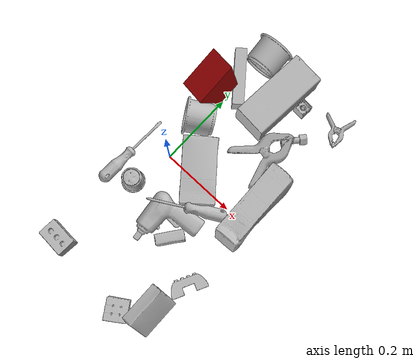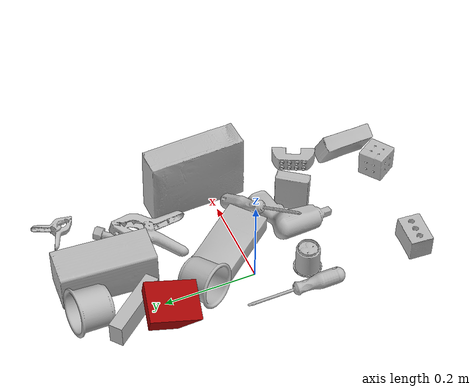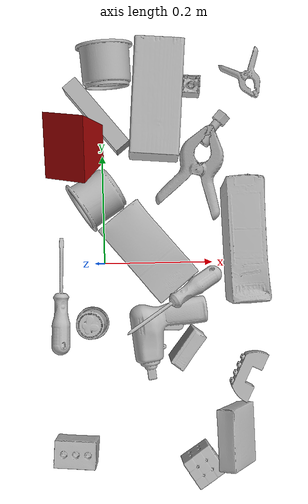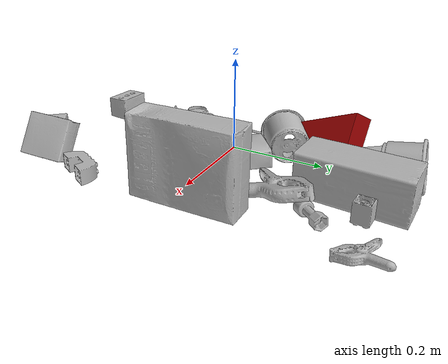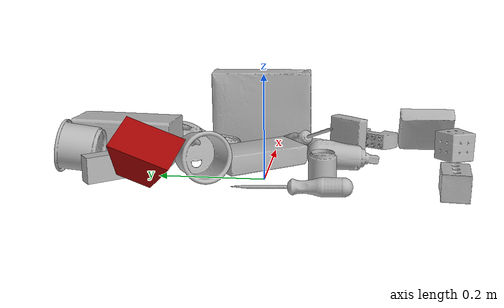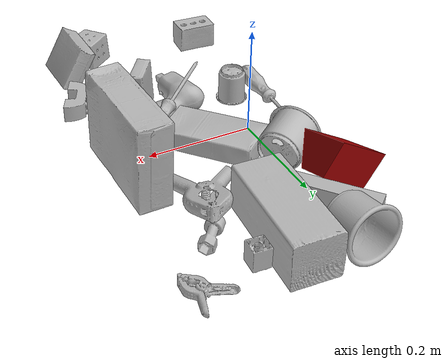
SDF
<sdf version="1.4">
  <world name="default">
    <light name="light1" type="point">
      <pose>0 0 1 0 0 0</pose>
      <diffuse>3 3 3 1</diffuse>
      <specular>3 3 3 1</specular>
    </light>
    <light name="light2" type="point">
      <pose>0 0.5 2 0 0 0</pose>
      <diffuse>1 1 1 1</diffuse>
      <specular>1 1 1 1</specular>
    </light>
    <light name="light3" type="point">
      <pose>0 0.5 2 0 0 0</pose>
      <diffuse>3 3 3 1</diffuse>
      <specular>3 3 3 1</specular>
    </light>
    <scene>
      <ambient>0.7 0.7 0.7</ambient>
    </scene>
    <model name="box21">
      <link name="link_box21">
        <collision name="default">
          <geometry>
            <mesh>
              <uri>model://cracker_box/collision_meshes/collision.obj</uri>
              <scale>1.0 1.0 1.0</scale>
            </mesh>
          </geometry>
          <surface>
            <friction>
              <ode>
                <mu>0.5</mu>
                <mu2>0.5</mu2>
              </ode>
            </friction>
          <contact>
        <ode>
            <max_vel>0</max_vel>
            <min_depth>0.0001</min_depth>
            <kp>1e8</kp>
        </ode>
    </contact></surface>
        </collision>
        <visual name="default">
          <geometry>
            <mesh>
              <uri>model://cracker_box/visual_meshes/visual.dae</uri>
              <scale>1.0 1.0 1.0</scale>
            </mesh>
          </geometry>
        </visual>
        <inertial>
          <mass>3.1344146728515625</mass>
          <pose>0.0009464123286306858 0.00025434247800149024 -0.0017029535956680775 -0.0003162077429326042 -0.011106488668875016 0.0025467950024750923</pose>
          <inertia>
            <ixx>0.0079725515</ixx>
            <iyy>0.01316425</iyy>
            <izz>0.01878659</izz>
            <ixy>0</ixy>
            <ixz>0</ixz>
            <iyz>0</iyz>
          </inertia>
        </inertial>
      </link>
      <pose>0.2518065869808197 0.0357876680791378 0.08175767213106155 1.5452338861004717 0.009040356279977546 1.6128749759805874</pose>
    </model>
    <model name="box22">
      <link name="link_box22">
        <collision name="default">
          <geometry>
            <mesh>
              <uri>model://jenga/collision_meshes/collision.obj</uri>
              <scale>1.0 1.0 1.0</scale>
            </mesh>
          </geometry>
          <surface>
            <friction>
              <ode>
                <mu>0.5</mu>
                <mu2>0.5</mu2>
              </ode>
            </friction>
          <contact>
        <ode>
            <max_vel>0</max_vel>
            <min_depth>0.0001</min_depth>
            <kp>1e8</kp>
        </ode>
    </contact></surface>
        </collision>
        <visual name="default">
          <geometry>
            <mesh>
              <uri>model://jenga/visual_meshes/visual.dae</uri>
              <scale>1.0 1.0 1.0</scale>
            </mesh>
          </geometry>
        </visual>
        <inertial>
          <mass>0.23869852721691132</mass>
          <pose>-2.502855807051674e-07 -0.0001025000965455547 -4.092339804628864e-05 0.0 -7.34215461761844e-07 0.0</pose>
          <inertia>
            <ixx>6.605367e-05</ixx>
            <iyy>0.00044757788</iyy>
            <izz>0.00047782745</izz>
            <ixy>0</ixy>
            <ixz>0</ixz>
            <iyz>0</iyz>
          </inertia>
        </inertial>
      </link>
      <pose>-0.006986482068896294 0.2693018913269043 0.02449663169682026 -1.5776039904648584 1.3404978914510776e-05 -0.884746933527563</pose>
    </model>
    <model name="box23">
      <link name="link_box23">
        <collision name="default">
          <geometry>
            <mesh>
              <uri>model://rubiks_cube/collision_meshes/collision.obj</uri>
              <scale>1.0 1.0 1.0</scale>
            </mesh>
          </geometry>
          <surface>
            <friction>
              <ode>
                <mu>0.5</mu>
                <mu2>0.5</mu2>
              </ode>
            </friction>
          <contact>
        <ode>
            <max_vel>0</max_vel>
            <min_depth>0.0001</min_depth>
            <kp>1e8</kp>
        </ode>
    </contact></surface>
        </collision>
        <visual name="default">
          <geometry>
            <mesh>
              <uri>model://rubiks_cube/visual_meshes/visual.dae</uri>
              <scale>1.0 1.0 1.0</scale>
            </mesh>
          </geometry>
        </visual>
        <inertial>
          <mass>0.26229962706565857</mass>
          <pose>2.6721041649580002e-05 5.2569666877388954e-05 -7.264316082000732e-06 -0.05467189873579491 -0.09814109048128683 -0.0344550730209751</pose>
          <inertia>
            <ixx>0.00014493814</ixx>
            <iyy>0.00014426222</iyy>
            <izz>0.00014613918</izz>
            <ixy>0</ixy>
            <ixz>0</ixz>
            <iyz>0</iyz>
          </inertia>
        </inertial>
      </link>
      <pose>0.17436820268630981 -0.3676859438419342 0.029701991006731987 -1.6115168325355764 -0.01939296086309491 -2.5522601842188792</pose>
    </model>
    <model name="cup1">
      <link name="link_cup1">
        <collision name="default">
          <geometry>
            <mesh>
              <uri>model://j_cups/collision_meshes/collision.obj</uri>
              <scale>1.0 1.0 1.0</scale>
            </mesh>
          </geometry>
          <surface>
            <friction>
              <ode>
                <mu>0.5</mu>
                <mu2>0.5</mu2>
              </ode>
            </friction>
          <contact>
        <ode>
            <max_vel>0</max_vel>
            <min_depth>0.0001</min_depth>
            <kp>1e8</kp>
        </ode>
    </contact></surface>
        </collision>
        <visual name="default">
          <geometry>
            <mesh>
              <uri>model://j_cups/visual_meshes/visual.dae</uri>
              <scale>1.0 1.0 1.0</scale>
            </mesh>
          </geometry>
        </visual>
        <inertial>
          <mass>0.10388943552970886</mass>
          <pose>0.0006164857186377048 0.0005398984649218619 -0.0013479008339345455 0.03030360356214998 0.03758024855654077 0.43868424196936845</pose>
          <inertia>
            <ixx>0.00015254253</ixx>
            <iyy>0.0001541288</iyy>
            <izz>0.00017584988</izz>
            <ixy>0</ixy>
            <ixz>0</ixz>
            <iyz>0</iyz>
          </inertia>
        </inertial>
      </link>
      <pose>0.012525876984000206 0.3560098707675934 0.04715463146567345 -1.328674091356929 -1.0401559700337963 -0.1494510926290632</pose>
    </model>
    <model name="cup2">
      <link name="link_cup2">
        <collision name="default">
          <geometry>
            <mesh>
              <uri>model://i_cups/collision_meshes/collision.obj</uri>
              <scale>1.0 1.0 1.0</scale>
            </mesh>
          </geometry>
          <surface>
            <friction>
              <ode>
                <mu>0.5</mu>
                <mu2>0.5</mu2>
              </ode>
            </friction>
          <contact>
        <ode>
            <max_vel>0</max_vel>
            <min_depth>0.0001</min_depth>
            <kp>1e8</kp>
        </ode>
    </contact></surface>
        </collision>
        <visual name="default">
          <geometry>
            <mesh>
              <uri>model://i_cups/visual_meshes/visual.dae</uri>
              <scale>1.0 1.0 1.0</scale>
            </mesh>
          </geometry>
        </visual>
        <inertial>
          <mass>0.057485051453113556</mass>
          <pose>0.00011239853483857587 0.00016797262651380152 -0.000857901235576719 -0.028982969026390082 -0.03987335468246028 -0.34591562504163004</pose>
          <inertia>
            <ixx>7.958892e-05</ixx>
            <iyy>8.029015e-05</iyy>
            <izz>8.8953486e-05</izz>
            <ixy>0</ixy>
            <ixz>0</ixz>
            <iyz>0</iyz>
          </inertia>
        </inertial>
      </link>
      <pose>-0.0070112356916069984 0.11903385818004608 0.04502492770552635 -1.174412416920109 1.2351472720084204 2.5270743818284362</pose>
    </model>
    <model name="box11">
      <link name="link_box11">
        <collision name="default">
          <geometry>
            <mesh>
              <uri>model://wood_block/collision_meshes/collision.obj</uri>
              <scale>1.0 1.0 1.0</scale>
            </mesh>
          </geometry>
          <surface>
            <friction>
              <ode>
                <mu>0.5</mu>
                <mu2>0.5</mu2>
              </ode>
            </friction>
          <contact>
        <ode>
            <max_vel>0</max_vel>
            <min_depth>0.0001</min_depth>
            <kp>1e8</kp>
        </ode>
    </contact></surface>
        </collision>
        <visual name="default">
          <geometry>
            <mesh>
              <uri>model://wood_block/visual_meshes/visual.dae</uri>
              <scale>1.0 1.0 1.0</scale>
            </mesh>
          </geometry>
        </visual>
        <inertial>
          <mass>2.2218124866485596</mass>
          <pose>-5.813315510749817e-06 -0.000570809468626976 0.0002640858292579651 -0.052211005792275555 -0.005192694700552194 -0.006861375481739596</pose>
          <inertia>
            <ixx>0.0029731211</ixx>
            <iyy>0.009392092</iyy>
            <izz>0.009356961</izz>
            <ixy>0</ixy>
            <ixz>0</ixz>
            <iyz>0</iyz>
          </inertia>
        </inertial>
      </link>
      <pose>0.1028292253613472 0.2923469841480255 0.04427739605307579 -1.5548834142513384 0.0048188369595806736 1.4938271163155115</pose>
    </model>
    <model name="box12">
      <link name="link_box12">
        <collision name="default">
          <geometry>
            <mesh>
              <uri>model://sugar_box/collision_meshes/collision.obj</uri>
              <scale>1.0 1.0 1.0</scale>
            </mesh>
          </geometry>
          <surface>
            <friction>
              <ode>
                <mu>0.5</mu>
                <mu2>0.5</mu2>
              </ode>
            </friction>
          <contact>
        <ode>
            <max_vel>0</max_vel>
            <min_depth>0.0001</min_depth>
            <kp>1e8</kp>
        </ode>
    </contact></surface>
        </collision>
        <visual name="default">
          <geometry>
            <mesh>
              <uri>model://sugar_box/visual_meshes/visual.dae</uri>
              <scale>1.0 1.0 1.0</scale>
            </mesh>
          </geometry>
        </visual>
        <inertial>
          <mass>1.0162616968154907</mass>
          <pose>0.0010343727190047503 3.849109634757042e-05 -0.00036364805418998003 -0.0004046261550277283 0.0010506634055573133 0.0026153787890220875</pose>
          <inertia>
            <ixx>0.00084674655</ixx>
            <iyy>0.002736858</iyy>
            <izz>0.0032763465</izz>
            <ixy>0</ixy>
            <ixz>0</ixz>
            <iyz>0</iyz>
          </inertia>
        </inertial>
      </link>
      <pose>0.08266903460025787 0.021882236003875732 0.02236240915954113 3.141271889090917 -0.02510873032150012 2.2691640052591144</pose>
    </model>
    <model name="box13">
      <link name="link_box13">
        <collision name="default">
          <geometry>
            <mesh>
              <uri>model://pudding_box/collision_meshes/collision.obj</uri>
              <scale>1.0 1.0 1.0</scale>
            </mesh>
          </geometry>
          <surface>
            <friction>
              <ode>
                <mu>0.5</mu>
                <mu2>0.5</mu2>
              </ode>
            </friction>
          <contact>
        <ode>
            <max_vel>0</max_vel>
            <min_depth>0.0001</min_depth>
            <kp>1e8</kp>
        </ode>
    </contact></surface>
        </collision>
        <visual name="default">
          <geometry>
            <mesh>
              <uri>model://pudding_box/visual_meshes/visual.dae</uri>
              <scale>1.0 1.0 1.0</scale>
            </mesh>
          </geometry>
        </visual>
        <inertial>
          <mass>0.24922829866409302</mass>
          <pose>0.0004894822486676276 0.0008067885646596551 -0.0005188828217796981 0.005213100397381839 -0.006603797317439846 0.02007982889363753</pose>
          <inertia>
            <ixx>0.00028173975</ixx>
            <iyy>0.00018955652</iyy>
            <izz>0.0004160624</izz>
            <ixy>0</ixy>
            <ixz>0</ixz>
            <iyz>0</iyz>
          </inertia>
        </inertial>
      </link>
      <pose>0.2341250330209732 -0.3148902356624603 0.04684871435165405 -0.030051825471196385 1.062202700741962 0.005358758582300775</pose>
    </model>
    <model name="box14">
      <link name="link_box14">
        <collision name="default">
          <geometry>
            <mesh>
              <uri>model://gelatin_box/collision_meshes/collision.obj</uri>
              <scale>1.0 1.0 1.0</scale>
            </mesh>
          </geometry>
          <surface>
            <friction>
              <ode>
                <mu>0.5</mu>
                <mu2>0.5</mu2>
              </ode>
            </friction>
          <contact>
        <ode>
            <max_vel>0</max_vel>
            <min_depth>0.0001</min_depth>
            <kp>1e8</kp>
        </ode>
    </contact></surface>
        </collision>
        <visual name="default">
          <geometry>
            <mesh>
              <uri>model://gelatin_box/visual_meshes/visual.dae</uri>
              <scale>1.0 1.0 1.0</scale>
            </mesh>
          </geometry>
        </visual>
        <inertial>
          <mass>0.21856601536273956</mass>
          <pose>0.0004319618456065655 0.00011156871914863586 -0.00036403213744051754 -0.001050372093012012 -0.00475581868936722 0.016440559471878533</pose>
          <inertia>
            <ixx>0.00015428978</ixx>
            <iyy>0.000110208384</iyy>
            <izz>0.00023486343</izz>
            <ixy>0</ixy>
            <ixz>0</ixz>
            <iyz>0</iyz>
          </inertia>
        </inertial>
      </link>
      <pose>0.14933572709560394 -0.15278533101081848 0.044736940413713455 1.613976207870861 -0.000138346245892148 0.9316451049305278</pose>
    </model>
    <model name="cup15">
      <link name="link_cup15">
        <collision name="default">
          <geometry>
            <mesh>
              <uri>model://b_cups/collision_meshes/collision.obj</uri>
              <scale>1.0 1.0 1.0</scale>
            </mesh>
          </geometry>
          <surface>
            <friction>
              <ode>
                <mu>0.5</mu>
                <mu2>0.5</mu2>
              </ode>
            </friction>
          <contact>
        <ode>
            <max_vel>0</max_vel>
            <min_depth>0.0001</min_depth>
            <kp>1e8</kp>
        </ode>
    </contact></surface>
        </collision>
        <visual name="default">
          <geometry>
            <mesh>
              <uri>model://b_cups/visual_meshes/visual.dae</uri>
              <scale>1.0 1.0 1.0</scale>
            </mesh>
          </geometry>
        </visual>
        <inertial>
          <mass>0.04691024869680405</mass>
          <pose>0.0005182002787478268 0.0018058588029816747 -0.0013381802709773183 0.1135631498080702 0.03872518969029637 -0.3456955043116969</pose>
          <inertia>
            <ixx>3.0706047e-05</ixx>
            <iyy>3.012308e-05</iyy>
            <izz>2.5838557e-05</izz>
            <ixy>0</ixy>
            <ixz>0</ixz>
            <iyz>0</iyz>
          </inertia>
        </inertial>
      </link>
      <pose>-0.024265510961413383 -0.10920479893684387 0.032155055552721024 3.1415894461371505 1.1848346017104242e-06 1.3048630607826348</pose>
    </model>
    <model name="toy1">
      <link name="link_toy1">
        <collision name="default">
          <geometry>
            <mesh>
              <uri>model://e_lego_duplo/collision_meshes/collision.obj</uri>
              <scale>1.0 1.0 1.0</scale>
            </mesh>
          </geometry>
          <surface>
            <friction>
              <ode>
                <mu>0.5</mu>
                <mu2>0.5</mu2>
              </ode>
            </friction>
          <contact>
        <ode>
            <max_vel>0</max_vel>
            <min_depth>0.0001</min_depth>
            <kp>1e8</kp>
        </ode>
    </contact></surface>
        </collision>
        <visual name="default">
          <geometry>
            <mesh>
              <uri>model://e_lego_duplo/visual_meshes/visual.dae</uri>
              <scale>1.0 1.0 1.0</scale>
            </mesh>
          </geometry>
        </visual>
        <inertial>
          <mass>0.06732096523046494</mass>
          <pose>0.000325604691170156 0.00023485434940084815 0.001952146296389401 -0.02256754688519212 -6.825533823954374e-05 -0.007625149208872714</pose>
          <inertia>
            <ixx>1.40386455e-05</ixx>
            <iyy>5.761822e-05</iyy>
            <izz>5.6108554e-05</izz>
            <ixy>0</ixy>
            <ixz>0</ixz>
            <iyz>0</iyz>
          </inertia>
        </inertial>
      </link>
      <pose>0.2584167718887329 -0.20555871725082397 0.01651816815137863 -1.5716710760413672 0.005947303559928353 1.1160362794364118</pose>
    </model>
    <model name="toy2">
      <link name="link_toy2">
        <collision name="default">
          <geometry>
            <mesh>
              <uri>model://c_toy_airplane/collision_meshes/collision.obj</uri>
              <scale>1.0 1.0 1.0</scale>
            </mesh>
          </geometry>
          <surface>
            <friction>
              <ode>
                <mu>0.5</mu>
                <mu2>0.5</mu2>
              </ode>
            </friction>
          <contact>
        <ode>
            <max_vel>0</max_vel>
            <min_depth>0.0001</min_depth>
            <kp>1e8</kp>
        </ode>
    </contact></surface>
        </collision>
        <visual name="default">
          <geometry>
            <mesh>
              <uri>model://c_toy_airplane/visual_meshes/visual.dae</uri>
              <scale>1.0 1.0 1.0</scale>
            </mesh>
          </geometry>
        </visual>
        <inertial>
          <mass>0.036399733275175095</mass>
          <pose>-0.00023024277470540255 -4.4302899482318026e-07 -0.0060805329121649265 -0.006192184726307751 -0.016797944030005924 0.7654593329003626</pose>
          <inertia>
            <ixx>1.6714015e-05</ixx>
            <iyy>1.6666843e-05</iyy>
            <izz>3.9241195e-06</izz>
            <ixy>0</ixy>
            <ixz>0</ixz>
            <iyz>0</iyz>
          </inertia>
        </inertial>
      </link>
      <pose>0.2051798552274704 0.24541929364204407 0.016113465651869774 -1.5406507989999643 0.888070356497666 -0.6971420815242717</pose>
    </model>
    <model name="toy3">
      <link name="link_toy3">
        <collision name="default">
          <geometry>
            <mesh>
              <uri>model://foam_brick/collision_meshes/collision.obj</uri>
              <scale>1.0 1.0 1.0</scale>
            </mesh>
          </geometry>
          <surface>
            <friction>
              <ode>
                <mu>0.5</mu>
                <mu2>0.5</mu2>
              </ode>
            </friction>
          <contact>
        <ode>
            <max_vel>0</max_vel>
            <min_depth>0.0001</min_depth>
            <kp>1e8</kp>
        </ode>
    </contact></surface>
        </collision>
        <visual name="default">
          <geometry>
            <mesh>
              <uri>model://foam_brick/visual_meshes/visual.dae</uri>
              <scale>1.0 1.0 1.0</scale>
            </mesh>
          </geometry>
        </visual>
        <inertial>
          <mass>0.28719362616539</mass>
          <pose>-0.0002522472059354186 0.00034584346576593816 -0.0002532101352699101 -0.2940183114741006 0.017274439707053432 -0.0007449906726392561</pose>
          <inertia>
            <ixx>0.00012545152</ixx>
            <iyy>0.00020028985</iyy>
            <izz>0.00020283528</izz>
            <ixy>0</ixy>
            <ixz>0</ixz>
            <iyz>0</iyz>
          </inertia>
        </inertial>
      </link>
      <pose>-0.055645961314439774 -0.34214872121810913 0.02591753378510475 0.01381752267686474 0.004276812560462753 -0.07219809268755785</pose>
    </model>
    <model name="toy4">
      <link name="link_toy4">
        <collision name="default">
          <geometry>
            <mesh>
              <uri>model://prism/collision_meshes/collision.obj</uri>
              <scale>1.0 1.0 1.0</scale>
            </mesh>
          </geometry>
          <surface>
            <friction>
              <ode>
                <mu>0.5</mu>
                <mu2>0.5</mu2>
              </ode>
            </friction>
          <contact>
        <ode>
            <max_vel>0</max_vel>
            <min_depth>0.0001</min_depth>
            <kp>1e8</kp>
        </ode>
    </contact></surface>
        </collision>
        <visual name="default">
          <geometry>
            <mesh>
              <uri>model://prism/visual_meshes/visual.dae</uri>
              <scale>1.0 1.0 1.0</scale>
            </mesh>
          </geometry>
        </visual>
        <inertial>
          <mass>0.7170383930206299</mass>
          <pose>-9.85359656624496e-05 -4.96157269935793e-07 -0.0033869098406285048 0.0 0.006559181231804993 0.0</pose>
          <inertia>
            <ixx>0.0006471183</ixx>
            <iyy>0.0007820508</iyy>
            <izz>0.0009579188</izz>
            <ixy>0</ixy>
            <ixz>0</ixz>
            <iyz>0</iyz>
          </inertia>
        </inertial>
      </link>
      <pose>-0.04640727862715721 0.2143823206424713 0.05504785105586052 -2.659033575602333 0.3510324533400359 -1.5938950307902364</pose>
    </model>
    <model name="toy5">
      <link name="link_toy5">
        <collision name="default">
          <geometry>
            <mesh>
              <uri>model://b_toy_airplane/collision_meshes/collision.obj</uri>
              <scale>1.0 1.0 1.0</scale>
            </mesh>
          </geometry>
          <surface>
            <friction>
              <ode>
                <mu>0.5</mu>
                <mu2>0.5</mu2>
              </ode>
            </friction>
          <contact>
        <ode>
            <max_vel>0</max_vel>
            <min_depth>0.0001</min_depth>
            <kp>1e8</kp>
        </ode>
    </contact></surface>
        </collision>
        <visual name="default">
          <geometry>
            <mesh>
              <uri>model://b_toy_airplane/visual_meshes/visual.dae</uri>
              <scale>1.0 1.0 1.0</scale>
            </mesh>
          </geometry>
        </visual>
        <inertial>
          <mass>0.399619996547699</mass>
          <pose>0.005081363022327423 0.004015584941953421 0.009543066844344139 -0.04001809649421662 -0.04022184162979335 -0.5601502893443677</pose>
          <inertia>
            <ixx>0.0007419019</ixx>
            <iyy>0.00029654545</iyy>
            <izz>0.0009229998</izz>
            <ixy>0</ixy>
            <ixz>0</ixz>
            <iyz>0</iyz>
          </inertia>
        </inertial>
      </link>
      <pose>0.1031184270977974 -0.1148437112569809 0.035689085721969604 3.069570164672954 0.07406005917894967 -1.457886998336369</pose>
    </model>
    <model name="toy6">
      <link name="link_toy6">
        <collision name="default">
          <geometry>
            <mesh>
              <uri>model://f_lego_duplo/collision_meshes/collision.obj</uri>
              <scale>1.0 1.0 1.0</scale>
            </mesh>
          </geometry>
          <surface>
            <friction>
              <ode>
                <mu>0.5</mu>
                <mu2>0.5</mu2>
              </ode>
            </friction>
          <contact>
        <ode>
            <max_vel>0</max_vel>
            <min_depth>0.0001</min_depth>
            <kp>1e8</kp>
        </ode>
    </contact></surface>
        </collision>
        <visual name="default">
          <geometry>
            <mesh>
              <uri>model://f_lego_duplo/visual_meshes/visual.dae</uri>
              <scale>1.0 1.0 1.0</scale>
            </mesh>
          </geometry>
        </visual>
        <inertial>
          <mass>0.05315950885415077</mass>
          <pose>2.3694145056651905e-05 0.0001339314185315743 0.0018837872194126248 0.029838727868319145 -0.014424898970195728 -0.6756716124708322</pose>
          <inertia>
            <ixx>1.1232896e-05</ixx>
            <iyy>1.1332969e-05</iyy>
            <izz>9.750634e-06</izz>
            <ixy>0</ixy>
            <ixz>0</ixz>
            <iyz>0</iyz>
          </inertia>
        </inertial>
      </link>
      <pose>0.16624218225479126 0.3214668333530426 0.02189110964536667 3.141535664718236 -0.0016724593082412577 3.0722795481966503</pose>
    </model>
    <model name="hardware1">
      <link name="link_hardware1">
        <collision name="default">
          <geometry>
            <mesh>
              <uri>model://flat_screwdriver/collision_meshes/collision.obj</uri>
              <scale>1.0 1.0 1.0</scale>
            </mesh>
          </geometry>
          <surface>
            <friction>
              <ode>
                <mu>0.5</mu>
                <mu2>0.5</mu2>
              </ode>
            </friction>
          <contact>
        <ode>
            <max_vel>0</max_vel>
            <min_depth>0.0001</min_depth>
            <kp>1e8</kp>
        </ode>
    </contact></surface>
        </collision>
        <visual name="default">
          <geometry>
            <mesh>
              <uri>model://flat_screwdriver/visual_meshes/visual.dae</uri>
              <scale>1.0 1.0 1.0</scale>
            </mesh>
          </geometry>
        </visual>
        <inertial>
          <mass>0.12191366404294968</mass>
          <pose>-0.0489187091588974 -0.0006576801533810794 -0.0006140916957519948 -0.5614853566550635 -0.0032337267722331534 0.006982277608032515</pose>
          <inertia>
            <ixx>1.4404012e-05</ixx>
            <iyy>0.00018286215</iyy>
            <izz>0.00018277747</izz>
            <ixy>0</ixy>
            <ixz>0</ixz>
            <iyz>0</iyz>
          </inertia>
        </inertial>
      </link>
      <pose>-0.08013321459293365 -0.059729207307100296 0.014353182166814804 -2.857243138275688 0.032964101171674684 1.5538994108365585</pose>
    </model>
    <model name="hardware2">
      <link name="link_hardware2">
        <collision name="default">
          <geometry>
            <mesh>
              <uri>model://medium_clamp/collision_meshes/collision.obj</uri>
              <scale>1.0 1.0 1.0</scale>
            </mesh>
          </geometry>
          <surface>
            <friction>
              <ode>
                <mu>0.5</mu>
                <mu2>0.5</mu2>
              </ode>
            </friction>
          <contact>
        <ode>
            <max_vel>0</max_vel>
            <min_depth>0.0001</min_depth>
            <kp>1e8</kp>
        </ode>
    </contact></surface>
        </collision>
        <visual name="default">
          <geometry>
            <mesh>
              <uri>model://medium_clamp/visual_meshes/visual.dae</uri>
              <scale>1.0 1.0 1.0</scale>
            </mesh>
          </geometry>
        </visual>
        <inertial>
          <mass>0.018204163759946823</mass>
          <pose>0.005390994716435671 0.00039532413939014077 -0.0001222158025484532 -0.0012269240735234023 0.0025845026557488396 0.03820772126630794</pose>
          <inertia>
            <ixx>4.959469e-06</ixx>
            <iyy>7.217431e-06</iyy>
            <izz>1.1117007e-05</izz>
            <ixy>0</ixy>
            <ixz>0</ixz>
            <iyz>0</iyz>
          </inertia>
        </inertial>
      </link>
      <pose>0.2695535719394684 0.34385013580322266 0.013314640149474144 -3.0195429046895588 0.07747156046143631 -1.1221715448901541</pose>
    </model>
    <model name="hardware3">
      <link name="link_hardware3">
        <collision name="default">
          <geometry>
            <mesh>
              <uri>model://large_clamp/collision_meshes/collision.obj</uri>
              <scale>1.0 1.0 1.0</scale>
            </mesh>
          </geometry>
          <surface>
            <friction>
              <ode>
                <mu>0.5</mu>
                <mu2>0.5</mu2>
              </ode>
            </friction>
          <contact>
        <ode>
            <max_vel>0</max_vel>
            <min_depth>0.0001</min_depth>
            <kp>1e8</kp>
        </ode>
    </contact></surface>
        </collision>
        <visual name="default">
          <geometry>
            <mesh>
              <uri>model://large_clamp/visual_meshes/visual.dae</uri>
              <scale>1.0 1.0 1.0</scale>
            </mesh>
          </geometry>
        </visual>
        <inertial>
          <mass>0.18972517549991608</mass>
          <pose>0.006369356997311115 0.0003585676895454526 -0.00018398048996459693 -0.002133071569430183 0.00967158655684735 0.02663316926682878</pose>
          <inertia>
            <ixx>0.0001673895</ixx>
            <iyy>0.00031788155</iyy>
            <izz>0.00045985627</izz>
            <ixy>0</ixy>
            <ixz>0</ixz>
            <iyz>0</iyz>
          </inertia>
        </inertial>
      </link>
      <pose>0.17594404518604279 0.16889964044094086 0.031065478920936584 -3.1402140839251844 -0.24812659785979493 1.2981413808460067</pose>
    </model>
    <model name="hardware4">
      <link name="link_hardware4">
        <collision name="default">
          <geometry>
            <mesh>
              <uri>model://phillips_screwdriver/collision_meshes/collision.obj</uri>
              <scale>1.0 1.0 1.0</scale>
            </mesh>
          </geometry>
          <surface>
            <friction>
              <ode>
                <mu>0.5</mu>
                <mu2>0.5</mu2>
              </ode>
            </friction>
          <contact>
        <ode>
            <max_vel>0</max_vel>
            <min_depth>0.0001</min_depth>
            <kp>1e8</kp>
        </ode>
    </contact></surface>
        </collision>
        <visual name="default">
          <geometry>
            <mesh>
              <uri>model://phillips_screwdriver/visual_meshes/visual.dae</uri>
              <scale>1.0 1.0 1.0</scale>
            </mesh>
          </geometry>
        </visual>
        <inertial>
          <mass>0.10424148291349411</mass>
          <pose>-0.047771818935871124 0.0010362300090491772 -0.000455554953077808 -0.15717568897110376 0.005850990280187748 -0.0021567475529960492</pose>
          <inertia>
            <ixx>1.2247306e-05</ixx>
            <iyy>0.00015355984</iyy>
            <izz>0.00015369034</izz>
            <ixy>0</ixy>
            <ixz>0</ixz>
            <iyz>0</iyz>
          </inertia>
        </inertial>
      </link>
      <pose>0.1307189017534256 -0.06780005991458893 0.05041184648871422 -1.0792231931374108 -0.3807482200332359 -2.5671846964462732</pose>
    </model>
  <physics type="ode">
      <max_contacts>50</max_contacts>
      <ode>
        <solver>
          <type>quick</type>
          <iters>75</iters>
        </solver>
        <constraints>
          <contact_max_correcting_vel>0</contact_max_correcting_vel>
          <contact_surface_layer>0</contact_surface_layer>
        </constraints>
      </ode>
    </physics></world>
</sdf>
